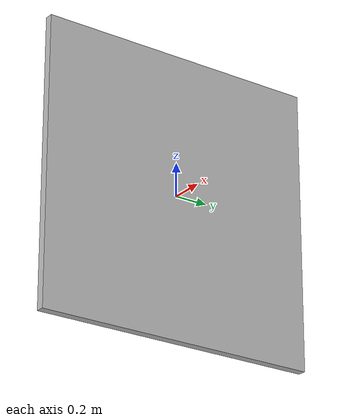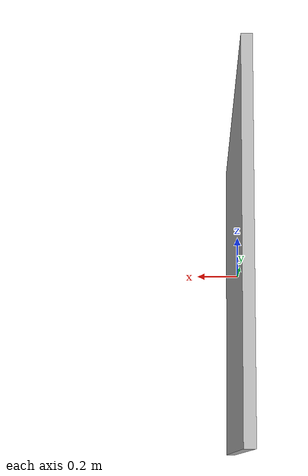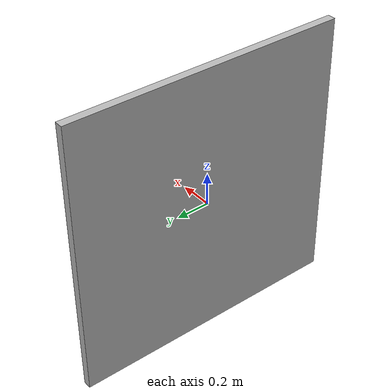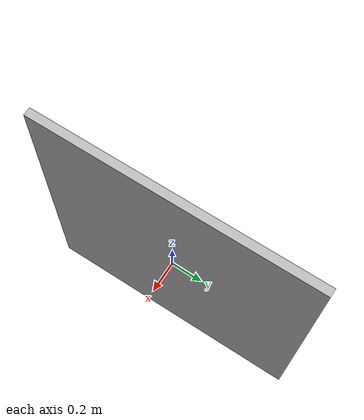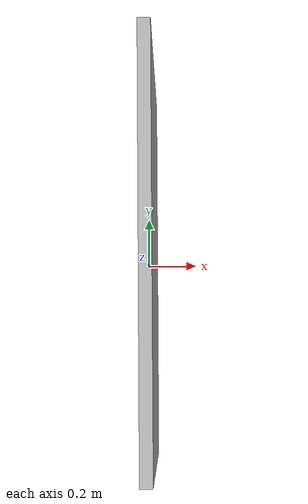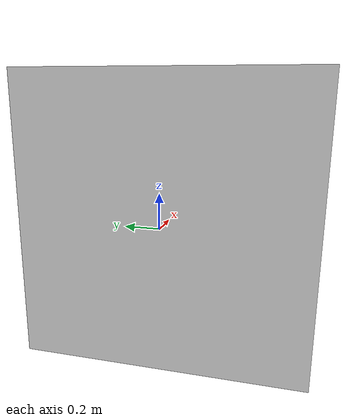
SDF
<?xml version="1.0" ?>
<sdf version="1.6">
  <model name="textured_shapes">
    <link name="box">
      <pose>0 0 0 0 0 1.5707</pose>
      <collision name="collision">
        <geometry>
          <box>
            <size>1.72 0.5 1.72</size>
          </box>
        </geometry>
      </collision>
      <visual name="visual">
        <geometry>
          <box>
            <size>1.72 0.05 1.72</size>
          </box>
        </geometry>
        <material>
          <script>
            <uri>model:///home/beta/catkin_ws/src/project_simulation/models/marker/materials/scripts</uri>
            <uri>model:///home/beta/catkin_ws/src/project_simulation/models/marker/materials/textures</uri>
            <name>Markers/Marker4</name>
          </script>
        </material>
      </visual>
    </link>
  </model>
</sdf>
